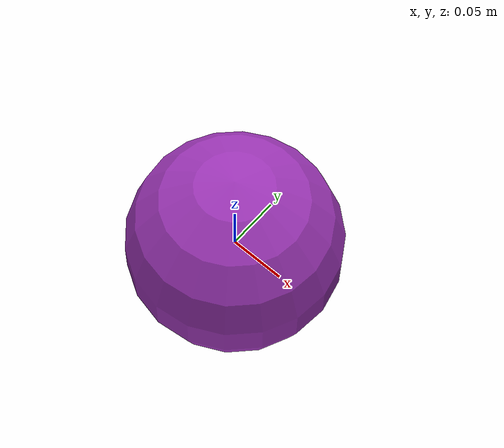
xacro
<?xml version="1.0"?>
<robot xmlns:xacro="http://www.ros.org/wiki/xacro">

    <xacro:include filename="inertial_macros.xacro"/>

    <link name="ball">
        <visual>
            <geometry>
                <sphere radius="0.095"/>
            </geometry>
        </visual>

        <collision>
            <geometry>
                <sphere radius="0.095"/>
            </geometry>
        </collision>

        <xacro:inertial_sphere mass="0.315" radius="0.095">
            <origin xyz="0 0 0" rpy="0 0 0"/>
        </xacro:inertial_sphere>
    </link>

    <gazebo reference="ball">
        <material>Gazebo/Purple</material>
        <mu1 value="0.08"/>
        <mu2 value="0.08"/>
    </gazebo>
</robot>
